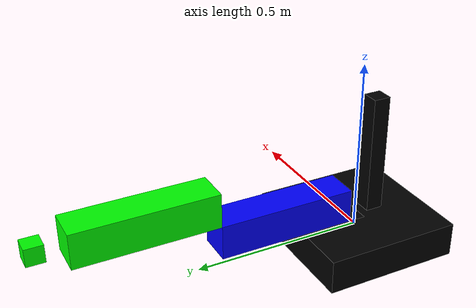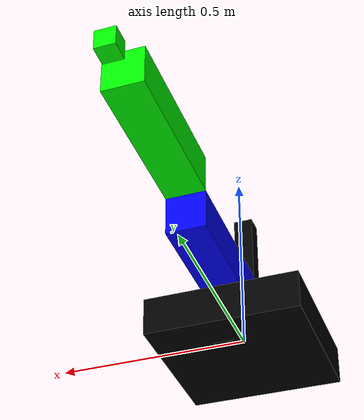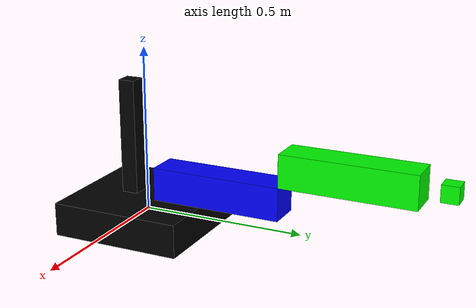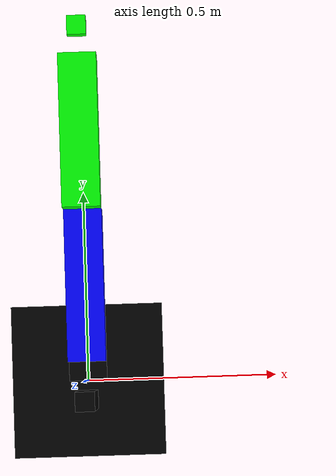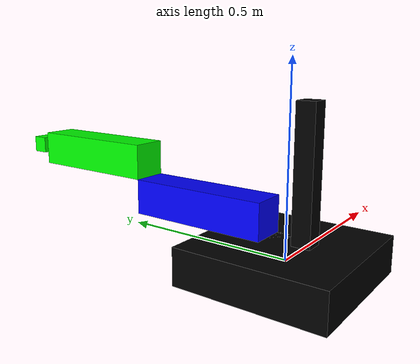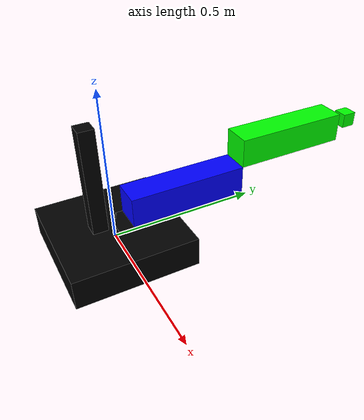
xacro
<?xml version="1.0"?>

<robot name="rrbot" xmlns:xacro="http://www.ros.org/wiki/xacro">

    <material name="black">
        <color rgba="0 0 0 1" />
    </material>

    <material name="red">
        <color rgba="1 0 0 1" />
    </material>

    <material name="blue">
        <color rgba="0 0 1 1" />
    </material>

    <material name="green">
        <color rgba="0 1 0 1" />
    </material>

    <link name="base_link">
        <visual>
            <geometry>
                <box size="0.4 0.4 0.1" />
            </geometry>
            <material name="black" />
        </visual>
        <collision>
            <geometry>
                <box size="0.4 0.4 0.1" />
            </geometry>
        </collision>
        <inertial>
            <mass value="10" />
            <origin xyz="0 0 0" />
            <inertia ixx="0.0302083333333" ixy="0.0" ixz="0.0" iyy="0.0302083333333" iyz="0.0" izz="0.00104166666667" />
        </inertial>
    </link>

    <link name="base_link_extension">
        <visual>
            <origin xyz="0 -0.05 0.2" rpy="0 0 0" />
            <geometry>
                <box size="0.05 0.05 0.4" />
            </geometry>
            <material name="black" />
        </visual>
        <collision>
            <origin xyz="0 -0.05 0.2" rpy="0 0 0" />
            <geometry>
                <box size="0.05 0.05 0.4" />
            </geometry>
        </collision>
        <inertial>
            <mass value="10" />
            <origin xyz="0 -0.05 0.2" rpy="0 0 0" />
            <inertia ixx="0.0302083333333" ixy="0.0" ixz="0.0" iyy="0.0302083333333" iyz="0.0" izz="0.00104166666667" />
        </inertial>
    </link>

    <joint name="base_link_extension_joint" type="fixed">
        <parent link="base_link" />
        <child link="base_link_extension" />
        <origin xyz="0 0.0 0.00" rpy="0 0 0.0" />
    </joint>

    <link name="link_0">
        <visual>
            <geometry>
                <box size="0.1 0.1 0.1" />
            </geometry>
            <material name="black" />
        </visual>
        <collision>
            <geometry>
                <box size="0.1 0.1 0.1" />
            </geometry>
        </collision>
        <inertial>
            <mass value="0.5" />
            <origin xyz="0 0 0" />
            <inertia ixx="0.0302083333333" ixy="0.0" ixz="0.0" iyy="0.0302083333333" iyz="0.0" izz="0.00104166666667" />
        </inertial>
    </link>

    <joint name="joint_0" type="prismatic">
        <parent link="base_link_extension" />
        <child link="link_0" />
        <axis xyz="0 0 1" />
        <limit effort="30" velocity="1.0" lower="0" upper="0.7" />
        <origin xyz="0 0.05 0.00" rpy="0 0 1.57" />
        <dynamics damping="0.7" friction="100.0" />
    </joint>

    <link name="link_1">
        <visual>
            <origin xyz="0.2 0 0" rpy="0 0 0" />
            <geometry>
                <box size="0.4 0.1 0.1" />
            </geometry>
            <material name="blue" />
        </visual>
        <collision>
            <origin xyz="0.2 0 0" rpy="0 0 0" />
            <geometry>
                <box size="0.4 0.1 0.1" />
            </geometry>
            <material name="green" />
        </collision>
        <inertial>
            <mass value="0.5" />
            <origin xyz="0.2 0 0" />
            <inertia ixx="0.0302083333333" ixy="0.0" ixz="0.0" iyy="0.0302083333333" iyz="0.0" izz="0.00104166666667" />
        </inertial>
    </link>

    <joint name="joint_1" type="revolute">
        <parent link="link_0" />
        <child link="link_1" />
        <origin xyz="0.0 0 0.1" rpy="0 0 0" />
        <axis xyz="0 0 1" />
        <limit lower="-3.1415" upper="3.1415" effort="40" velocity="2.0" />
        <dynamics damping="0.7" friction="100.0" />

    </joint>

    <link name="link_2">
        <visual>
            <origin xyz="0.2 0 0" rpy="0 0 0" />
            <geometry>
                <box size="0.4 0.1 0.1" />
            </geometry>
            <material name="green" />
        </visual>
        <collision>
            <origin xyz="0.2 0 0" rpy="0 0 0" />
            <geometry>
                <box size="0.4 0.1 0.1" />
            </geometry>
            <material name="green" />
        </collision>
        <inertial>
            <mass value="0.5" />
            <origin xyz="0.2 0 0" />
            <inertia ixx="0.0302083333333" ixy="0.0" ixz="0.0" iyy="0.0302083333333" iyz="0.0" izz="0.00104166666667" />
        </inertial>
    </link>

    <joint name="joint_2" type="revolute">
        <parent link="link_1" />
        <child link="link_2" />
        <origin xyz="0.4 0.0 0.1" rpy="0 0 0" />
        <axis xyz="0 0 1" />
        <limit lower="-2.0" upper="2.0" effort="40" velocity="2.0" />
        <dynamics damping="0.7" friction="100.0" />

    </joint>

    <link name="tcp_link">
        <visual>
            <origin xyz="0.025 0 0" rpy="0 0 0" />
            <geometry>
                <box size="0.05 0.05 0.05" />
            </geometry>
            <material name="green" />
        </visual>
        <collision>
            <origin xyz="0 0 0" rpy="0 0 0" />
            <geometry>
                <box size="0.05 0.05 0.05" />
            </geometry>
            <material name="green" />
        </collision>
        <inertial>
            <mass value="0.05" />
            <origin xyz="0 0 0" />
            <inertia ixx="0.0302083333333" ixy="0.0" ixz="0.0" iyy="0.0302083333333" iyz="0.0" izz="0.00104166666667" />
        </inertial>
    </link>

    <joint name="tcp_joint" type="fixed">
        <parent link="link_2" />
        <child link="tcp_link" />
        <origin xyz="0.45 0.0 0.0" rpy="0 0 0" />
        <dynamics damping="10.0" friction="100.0" />

    </joint>

    <!-- ros_control plugin -->
    <ros2_control name="GazeboSystem" type="system">
        <hardware>
            <plugin>gazebo_ros2_control/GazeboSystem</plugin>
        </hardware>
        <joint name="joint_1">
            <command_interface name="position">
                <param name="min">-1</param>
                <param name="max">1</param>
            </command_interface>
            <state_interface name="position" />
            <state_interface name="velocity" />
            <state_interface name="effort" />
        </joint>
        <joint name="joint_2">
            <command_interface name="position">
                <param name="min">-1</param>
                <param name="max">1</param>
            </command_interface>
            <state_interface name="position" />
            <state_interface name="velocity" />
            <state_interface name="effort" />
        </joint>
        <joint name="joint_0">
            <command_interface name="position">
                <param name="min">-1</param>
                <param name="max">1</param>
            </command_interface>
            <state_interface name="position" />
            <state_interface name="velocity" />
            <state_interface name="effort" />
        </joint>
    </ros2_control>

    <transmission name="joint_0_trans">
        <type>transmission_interface/SimpleTransmission</type>
        <joint name="joint_0">
            <hardwareInterface>hardware_interface/EffortJointInterface</hardwareInterface>
        </joint>
        <actuator name="joint_0_motor">
            <hardwareInterface>hardware_interface/EffortJointInterface</hardwareInterface>
            <mechanicalReduction>1</mechanicalReduction>
        </actuator>
    </transmission>

    <transmission name="joint_1_trans">
        <type>transmission_interface/SimpleTransmission</type>
        <joint name="joint_1">
            <hardwareInterface>hardware_interface/EffortJointInterface</hardwareInterface>
        </joint>
        <actuator name="joint_1_motor">
            <hardwareInterface>hardware_interface/EffortJointInterface</hardwareInterface>
            <mechanicalReduction>1</mechanicalReduction>
        </actuator>
    </transmission>

    <transmission name="joint_2_trans">
        <type>transmission_interface/SimpleTransmission</type>
        <joint name="joint_2">
            <hardwareInterface>hardware_interface/EffortJointInterface</hardwareInterface>
        </joint>
        <actuator name="joint_2_motor">
            <hardwareInterface>hardware_interface/EffortJointInterface</hardwareInterface>
            <mechanicalReduction>1</mechanicalReduction>
        </actuator>
    </transmission>

    <gazebo>
        <plugin filename="libgazebo_ros2_control.so" name="gazebo_ros2_control">
            <parameters>$(find berryarm_desc)/rrbot_gazebo_forward_controller_position.yaml</parameters>
        </plugin>
    </gazebo>

    <gazebo reference="base_link_extension">
        <material>Gazebo/Red</material>
        <kp>1e07</kp>
        <kd>100.0</kd>
        <mu1>1.0</mu1>
        <mu2>1.0</mu2>
    </gazebo>
    <!-- Link1 -->
    <gazebo reference="base_link">
        <material>Gazebo/Red</material>
        <kp>1e07</kp>
        <kd>100.0</kd>
        <mu1>1.0</mu1>
        <mu2>1.0</mu2>
    </gazebo>

    <!-- Link2 -->
    <gazebo reference="link_0">
        <mu1>1.0</mu1>
        <mu2>1.0</mu2>
        <material>Gazebo/Black</material>
    </gazebo>

    <!-- Link3 -->
    <gazebo reference="link_1">
        <mu1>0.2</mu1>
        <mu2>0.2</mu2>
        <material>Gazebo/Orange</material>
    </gazebo>

    <gazebo reference="link_2">
        <mu1>0.2</mu1>
        <mu2>0.2</mu2>
        <material>Gazebo/Black</material>
    </gazebo>

    <!-- Link3 -->
    <gazebo reference="tcp_link">
        <mu1>0.2</mu1>
        <mu2>0.2</mu2>
        <material>Gazebo/Orange</material>
    </gazebo>
</robot>
